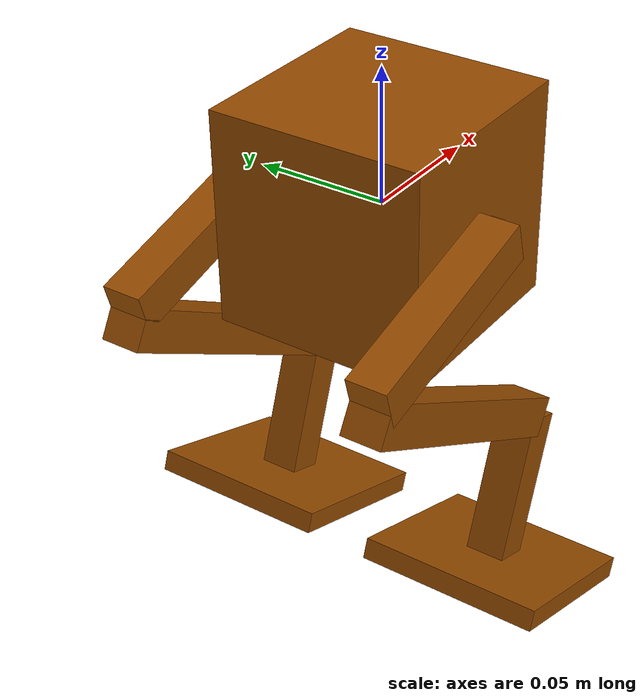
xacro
<?xml version="1.0"?>
<robot name="robot_duck" xmlns:xacro="http://www.ros.org/wiki/xacro">
    <!-- Propreties -->
    <xacro:arg name="namespace" default="robot_duck"/>
    <xacro:arg name="debug" default="0"/>

    <xacro:arg name="cog" default="0 0 0"/>
    <xacro:arg name="mass" default="0.01"/>

    <material name="brown">
        <color rgba="0.588 0.294 0.0 1"/>
    </material>
    <material name="black">
        <color rgba="0.1 0.1 0.1 1"/>
    </material>
    <material name="white">
        <color rgba="1 1 1 1"/>
    </material>

    <!-- Links MACRO -->
    <xacro:macro name="mesh_link" params="name origin_xyz origin_rpy box_size meshscale c_xyz matname mass i_xyz i_rpy length width height">
        <link name="${name}">
        <visual>
            <origin rpy="${origin_rpy}" xyz="${origin_xyz}" />
            <geometry>
                <box size="${box_size}"/>
            </geometry>
            <material name="${matname}"/>
        </visual>

        <collision>
            <origin rpy="${origin_rpy}" xyz="${c_xyz}" />
            <geometry>
                <box size="${length} ${width} ${height}" />
            </geometry>
        </collision>

        <inertial>
            <mass value="${mass}" />
            <origin rpy="${i_rpy}" xyz="${i_xyz}" /> <!-- Inertial Axes -->
            <inertia ixx="${mass * (width * width + height * height)/12.0}" ixy="${0}" ixz="${0}" iyx="${0}" iyy="${mass * (length * length + height * height)/12.0}" iyz="${0}" izx="${0}" izy="${0}" izz="${mass * (length * length + width * width)/12.0}" />
        </inertial>
        </link>
    </xacro:macro>

    <!-- Joint MACRO -->
    <xacro:macro name="frame_joint" params="name type origin_rpy origin_xyz parent child">
        <joint name="${name}" type="${type}">
        <origin rpy="${origin_rpy}" xyz="${origin_xyz}" />
        <parent link="${parent}" />
        <child link="${child}" />
        </joint>
    </xacro:macro>

    <xacro:macro name="rev_joint" params="name type axis_xyz origin_rpy origin_xyz parent child effort velocity damping friction upper lower">
        <joint name="${name}" type="${type}">
        <axis xyz="${axis_xyz}" />
        <origin rpy="${origin_rpy}" xyz="${origin_xyz}" />
        <parent link="${parent}" />
        <child link="${child}" />
        <limit effort="${effort}" velocity="${velocity}" lower="${lower}" upper="${upper}"/>
        <joint_properties damping="${damping}" friction="${friction}" />
        </joint>
    </xacro:macro>

    <!-- Transmissions -->

    <!-- Offsets-->
	<xacro:property name="center_thickness" value="0.018" />
	<xacro:property name="center_orgin_offset" value="0.5" />
	<xacro:property name="side_length" value="0.148" />
	<xacro:property name="bridge_length" value="0.0535" />
    <xacro:property name="OFFSET_Z" value="1.0"/>

    <!-- Limits -->

	<!-- Toto -->
	<xacro:property name="hip_x_upper_limit" value="${8.05 * pi/180}" />
    <xacro:property name="hip_x_lower_limit" value="${-20.35 * pi/180}" />

	<xacro:property name="hip_y_upper_limit" value="${20.123 * pi/180}" />
    <xacro:property name="hip_y_lower_limit" value="${-27.3586 * pi/180}" />

	<xacro:property name="knee_upper_limit" value="${41.37 * pi/180}" />
    <xacro:property name="knee_lower_limit" value="${-35.927 * pi/180}" />

	<xacro:property name="ankle_upper_limit" value="${22.50 * pi/180}" />
    <xacro:property name="ankle_lower_limit" value="${-10.544 * pi/180}" />

	<xacro:property name="feet_upper_limit" value="${60.0 * pi/180}" />
    <xacro:property name="feet_lower_limit" value="${-60.0 * pi/180}" />

     <!-- Origin of the world -->

    <!-- Base link -->
    <xacro:mesh_link name="base_link"
		origin_rpy="0 0 0"
		origin_xyz="0 0 0.0"
		i_rpy="0 0 0"
		i_xyz="0 0 0"
		mass="0.1"
		c_xyz="0 0 0"
		length="0.08"
		width="0.08"
		height="0.08"
		matname="brown"
		box_size="0.08 0.08 0.08"
		meshscale="1 1 1"/>

    <!-- Base to femur link (R) -->
    <xacro:mesh_link name="base_to_femur_right"
		origin_rpy="0 0 0"
		origin_xyz="0 0 0"
		i_rpy="0 0 0"
		i_xyz="0 0 0"
		mass="0.01"
		c_xyz="0 0 0"
		length="0.01"
		width="0.01"
		height="0.01"
		matname="brown"
		box_size="0.01 0.01 0.01"
		meshscale="1 1 1"/>

    <!-- Base to femur link (L) -->
    <xacro:mesh_link name="base_to_femur_left"
		origin_rpy="0 0 0"
		origin_xyz="0 0 0"
		i_rpy="0 0 0"
		i_xyz="0 0 0"
		mass="0.01"
		c_xyz="0 0 0"
		length="0.01"
		width="0.01"
		height="0.01"
		matname="brown"
		box_size="0.01 0.01 0.01"
		meshscale="1 1 1"/>

    <!-- Hip joint (L) -->
    <xacro:rev_joint name="hip_rev_joint_left"
				type="revolute"
			    axis_xyz="1 0 0"
			    origin_rpy="0 0 ${pi}"
				origin_xyz="0 +${0.08/2} 0"
			    effort="4.0"
			    velocity="4.0"
			    damping="0.0"
			    friction="0.0"
			    upper="${hip_x_upper_limit}"
			    lower="${hip_x_lower_limit}"
			    parent="base_link"
			    child="base_to_femur_right" />

    <!-- Hip joint (R) -->
    <xacro:rev_joint name="hip_rev_joint_right"
				type="revolute"
			    axis_xyz="1 0 0"
			    origin_rpy="0 0 ${pi}"
				origin_xyz="0 -${0.08/2} 0"
			    effort="4.0"
			    velocity="4.0"
			    damping="0.0"
			    friction="0.0"
			    upper="${hip_x_upper_limit}"
			    lower="${hip_x_lower_limit}"
			    parent="base_link"
			    child="base_to_femur_left" />

    <!-- Femur link (R) -->
    <xacro:mesh_link name="femur_link_right"
		origin_rpy="0 +${75*pi/180} 0"
		origin_xyz="-${0.08/2} +${0.015/2} -${0.015/2}"
		i_rpy="0 0 0"
		i_xyz="0 0 0"
		mass="0.01"
		c_xyz="0 0 0"
		length="0.015"
		width="0.015"
		height="0.08"
		matname="brown"
		box_size="0.015 0.015 0.08"
		meshscale="1 1 1"/>

    <!-- Hip joint (R) -->
    <xacro:rev_joint name="to_knee_joint_right"
				type="revolute"
			    axis_xyz="0 1 0"
			    origin_rpy="0 0 ${pi}"
				origin_xyz="0 0 0"
			    effort="4.0"
			    velocity="4.0"
			    damping="0.0"
			    friction="0.0"
			    upper="${hip_y_upper_limit}"
			    lower="${hip_y_lower_limit}"
			    parent="base_to_femur_right"
			    child="femur_link_right" />

	<!-- Femur link (L) -->
    <xacro:mesh_link name="femur_link_left"
		origin_rpy="0 +${75*pi/180} 0"
		origin_xyz="-${0.08/2} -${0.015/2} -${0.015/2}"
		i_rpy="0 0 0"
		i_xyz="0 0 0"
		mass="0.01"
		c_xyz="0 0 0"
		length="0.015"
		width="0.015"
		height="0.08"
		matname="brown"
		box_size="0.015 0.015 0.08"
		meshscale="1 1 1"/>

    <!-- Hip joint (L) -->
    <xacro:rev_joint name="to_knee_joint_left"
		type="revolute"
		axis_xyz="0 1 0"
		origin_rpy="0 0 ${pi}"
		origin_xyz="0 0 0"
		effort="4.0"
		velocity="4.0"
		damping="0.0"
		friction="0.0"
		upper="${hip_y_upper_limit}"
		lower="${hip_y_lower_limit}"
		parent="base_to_femur_left"
		child="femur_link_left" />

	 <!-- Knee link (R) -->
    <xacro:mesh_link name="tibio_link_right"
		origin_rpy="0 0 0"
		origin_xyz="0.0 0.0 -${0.12/2}"
		i_rpy="0 0 0"
		i_xyz="0 0 0"
		mass="0.01"
		c_xyz="0 0 0"
		length="0.015"
		width="0.015"
		height="0.12"
		matname="brown"
		box_size="0.015 0.015 0.12"
		meshscale="1 1 1"/>

    <!-- Knee joint (R) -->
    <xacro:rev_joint name="knee_joint_right"
		type="revolute"
		axis_xyz="0 1 0"
		origin_rpy="0 ${pi/3} ${pi}"
		origin_xyz="-${0.08} +${0.015/2} -${0.023}"
		effort="4.0"
		velocity="4.0"
		damping="0.0"
		friction="0.0"
		upper="${knee_upper_limit}"
		lower="${knee_lower_limit}"
		parent="femur_link_right"
		child="tibio_link_right" />

	<!-- Knee link (L) -->
    <xacro:mesh_link name="tibio_link_left"
		origin_rpy="0 0 0"
		origin_xyz="0.0 0.0 -${0.12/2}"
		i_rpy="0 0 0"
		i_xyz="0 0 0"
		mass="0.01"
		c_xyz="0 0 0"
		length="0.015"
		width="0.015"
		height="0.12"
		matname="brown"
		box_size="0.015 0.015 0.12"
		meshscale="1 1 1"/>

    <!-- Knee joint (L) -->
    <xacro:rev_joint name="knee_joint_left"
		type="revolute"
		axis_xyz="0 1 0"
		origin_rpy="0 ${pi/3} ${pi}"
		origin_xyz="-${0.08} -${0.015/2} -${0.023}"
		effort="4.0"
		velocity="4.0"
		damping="0.0"
		friction="0.0"
		upper="${knee_upper_limit}"
		lower="${knee_lower_limit}"
		parent="femur_link_left"
		child="tibio_link_left" />

	<!-- Tarso link (R) -->
    <xacro:mesh_link name="tarso_link_right"
		origin_rpy="0 0 0"
		origin_xyz="0.0 0.0 -${0.06/2}"
		i_rpy="0 0 0"
		i_xyz="0 0 0"
		mass="0.01"
		c_xyz="0 0 0"
		length="0.015"
		width="0.015"
		height="0.06"
		matname="brown"
		box_size="0.015 0.015 0.06"
		meshscale="1 1 1"/>

    <!-- Tarso joint (R) -->
    <xacro:rev_joint name="ankle_joint_right"
		type="revolute"
		axis_xyz="0 1 0"
		origin_rpy="0 ${80*pi/180} ${pi}"
		origin_xyz="0.0 -0.0 -0.12"
		effort="4.0"
		velocity="4.0"
		damping="0.0"
		friction="0.0"
		upper="${ankle_upper_limit}"
		lower="${ankle_lower_limit}"
		parent="tibio_link_right"
		child="tarso_link_right" />

	<!-- Tarso link (L) -->
    <xacro:mesh_link name="tarso_link_left"
		origin_rpy="0 0 0"
		origin_xyz="0.0 0.0 -${0.06/2}"
		i_rpy="0 0 0"
		i_xyz="0 0 0"
		mass="0.01"
		c_xyz="0 0 0"
		length="0.015"
		width="0.015"
		height="0.06"
		matname="brown"
		box_size="0.015 0.015 0.06"
		meshscale="1 1 1"/>

    <!-- Tarso joint (L) -->
    <xacro:rev_joint name="ankle_joint_left"
		type="revolute"
		axis_xyz="0 1 0"
		origin_rpy="0 ${80*pi/180} ${pi}"
		origin_xyz="0.0 -0.0 -0.12"
		effort="4.0"
		velocity="4.0"
		damping="0.0"
		friction="0.0"
		upper="${ankle_upper_limit}"
		lower="${ankle_lower_limit}"
		parent="tibio_link_left"
		child="tarso_link_left" />

	<!-- Feet link (L) -->
	<xacro:mesh_link name="toe_link_left"
		origin_rpy="0 0 0"
		origin_xyz="0.0 0.0 0.0"
		i_rpy="0 0 0"
		i_xyz="0 0 0"
		mass="0.01"
		c_xyz="0 0 0"
		length="0.07"
		width="0.07"
		height="0.008"
		matname="brown"
		box_size="0.07 0.07 0.008"
		meshscale="1 1 1"/>

	<!-- Feet joint (L) -->
    <xacro:rev_joint name="feet_joint_left"
		type="revolute"
		axis_xyz="0 0 1"
		origin_rpy="0 0 ${pi}"
		origin_xyz="0.0 0.0 -${0.06}"
		effort="4.0"
		velocity="4.0"
		damping="0.0"
		friction="0.0"
		upper="${feet_upper_limit}"
		lower="${feet_lower_limit}"
		parent="tarso_link_left"
		child="toe_link_left" />

	<!-- Feet link (R) -->
	<xacro:mesh_link name="toe_link_right"
		origin_rpy="0 0 0"
		origin_xyz="0.0 0.0 0.0"
		i_rpy="0 0 0"
		i_xyz="0 0 0"
		mass="0.01"
		c_xyz="0 0 0"
		length="0.07"
		width="0.07"
		height="0.008"
		matname="brown"
		box_size="0.07 0.07 0.008"
		meshscale="1 1 1"/>

	<!-- Feet joint (R) -->
    <xacro:rev_joint name="feet_joint_right"
		type="revolute"
		axis_xyz="0 0 1"
		origin_rpy="0 0 ${pi}"
		origin_xyz="0.0 0.0 -${0.06}"
		effort="4.0"
		velocity="4.0"
		damping="0.0"
		friction="0.0"
		upper="${feet_upper_limit}"
		lower="${feet_lower_limit}"
		parent="tarso_link_right"
		child="toe_link_right" />

</robot>
